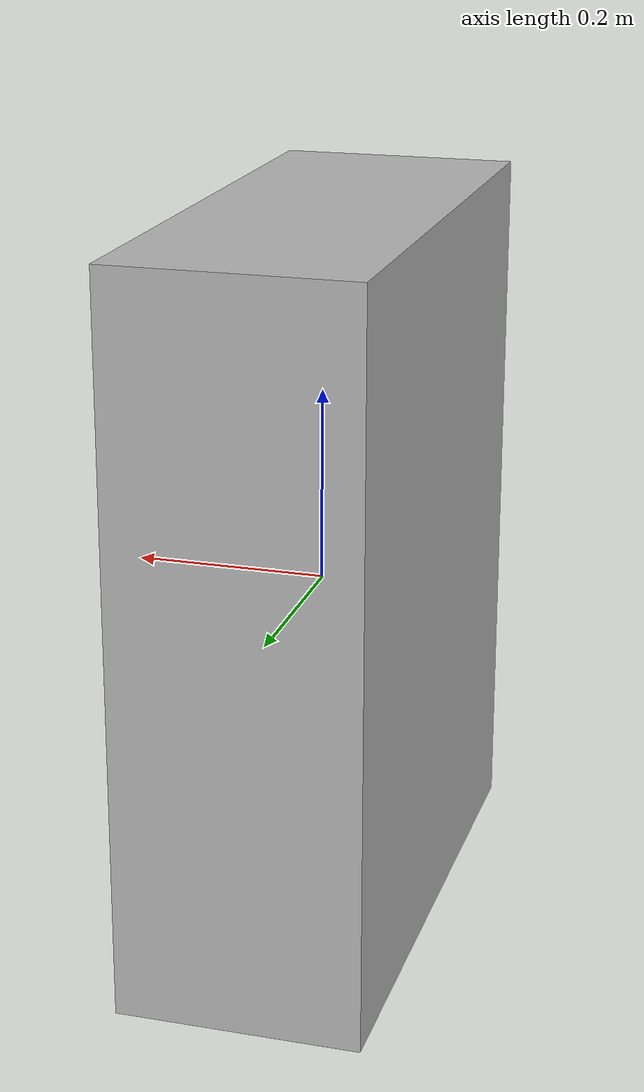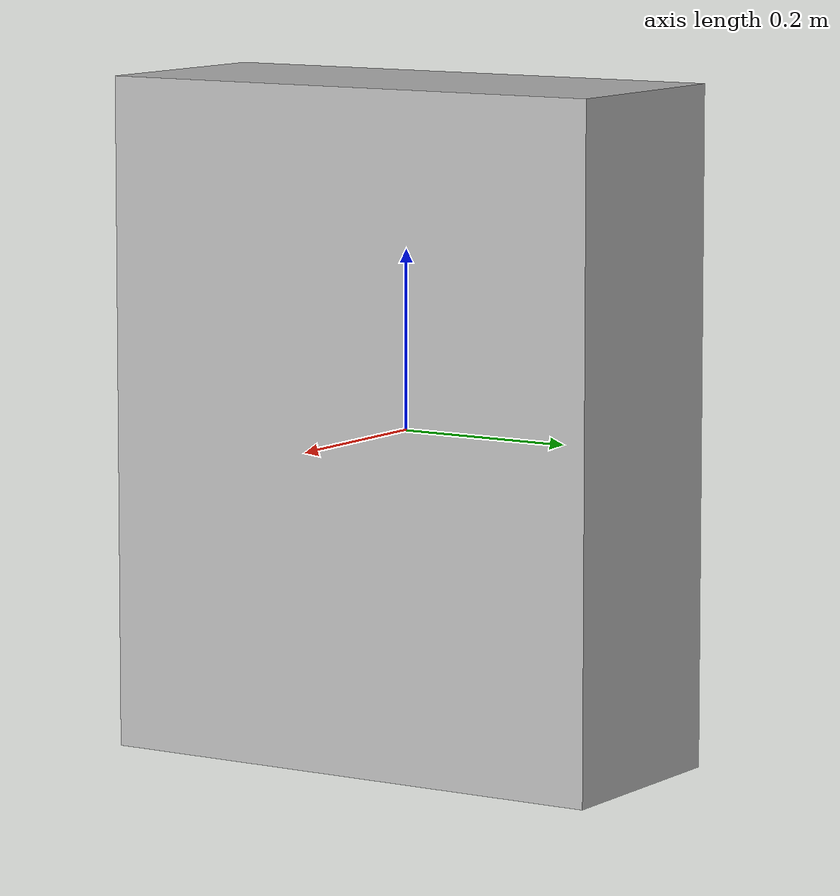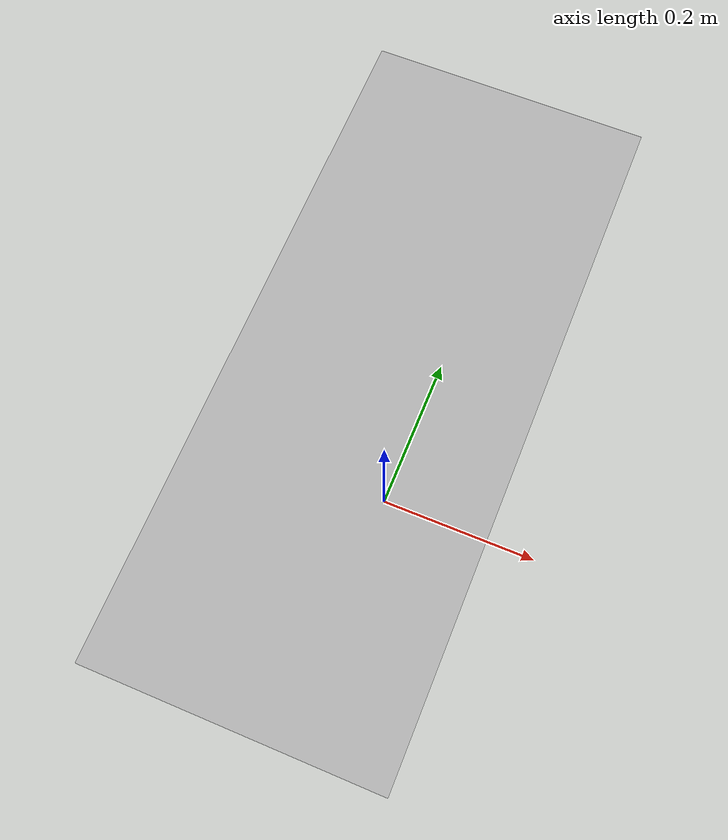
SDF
<?xml version="1.0" ?>
<sdf version='1.5'>
<model name='elec_box'>
<static>true</static>
<link name="link">
   <pose frame=''>0 0 0.01 0 0 0</pose>
   <collision name='elec_boxC'>
    <geometry>
      <mesh>
        <scale>1.0 1.0 1.0</scale>
        <uri>model://elec_box/elec_box.dae</uri>
      </mesh>
    </geometry>
  </collision>
  <visual name='elec_boxV'>
    <cast_shadows>false</cast_shadows>
    <geometry>
      <mesh>
        <scale>1.0 1.0 1.0</scale>
        <uri>model://elec_box/elec_box.dae</uri>
      </mesh>
    </geometry>
    <material>
      <script>
        <name>elec_box</name>
        <uri>model://elec_box/elec_box.dae</uri>
      </script>
    </material>
  </visual>
</link>
</model>
</sdf>
